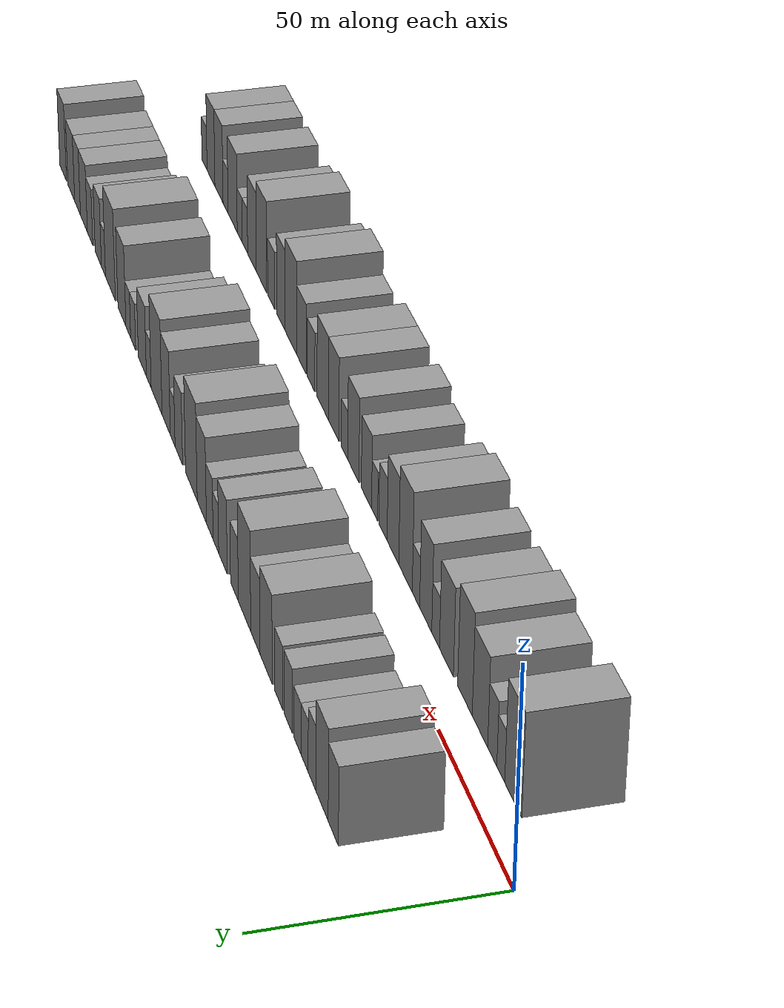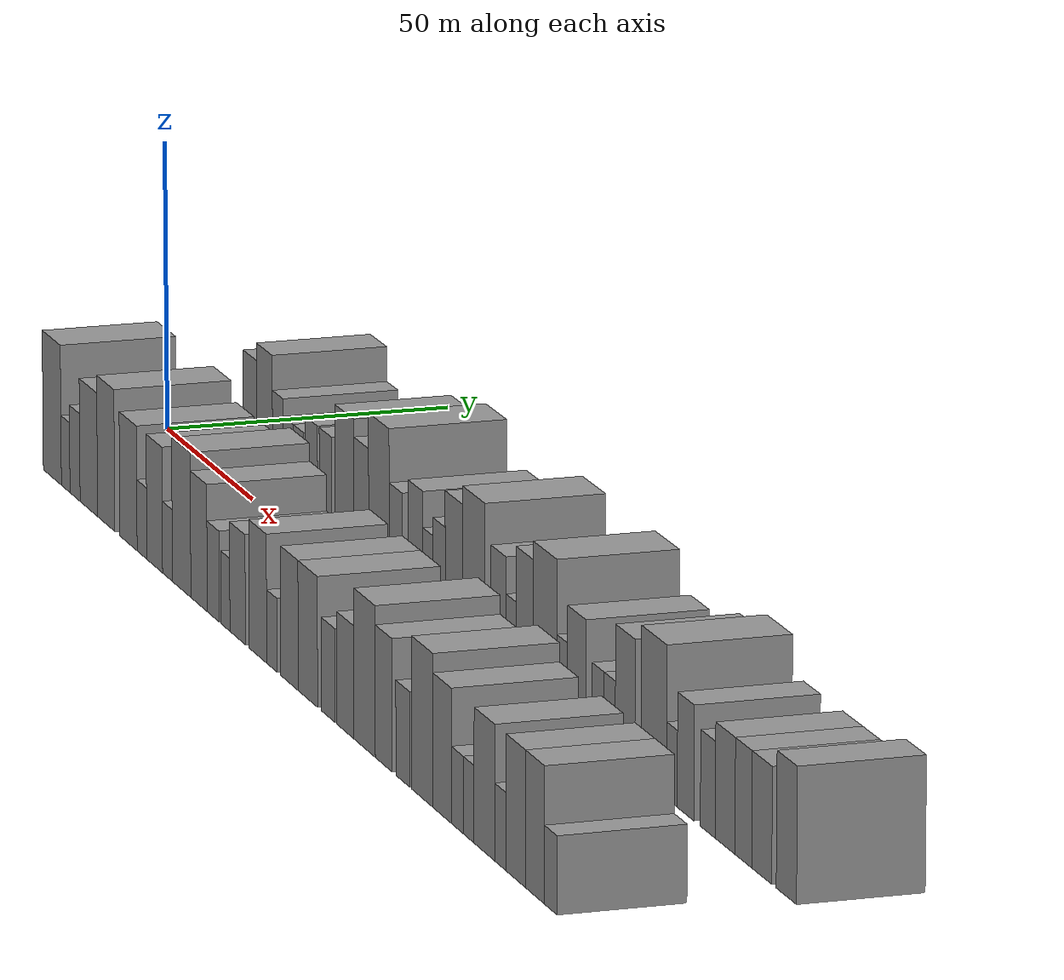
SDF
<sdf version="1.6">
 <world name="default">
  <scene>
   <sky><clouds><speed>12</speed></clouds></sky>
   <ambient>0.4 0.4 0.4 1</ambient>
   <background>0.7 0.7 0.7 1</background>
   <shadows>1</shadows>
  </scene>
  <gravity>0 0 -9.8066</gravity>
  <magnetic_field>6e-06 2.3e-05 -4.2e-05</magnetic_field>
  <physics default="0" name="default_physics" type="ode">
   <ode>
    <solver>
     <type>quick</type>
     <iters>10</iters>
     <sor>1.0</sor>
     <use_dynamic_moi_rescaling>0</use_dynamic_moi_rescaling>
    </solver>
    <constraints>
     <cfm>0</cfm>
     <erp>0.2</erp>
     <contact_max_correcting_vel>100</contact_max_correcting_vel>
     <contact_surface_layer>0.001</contact_surface_layer>
    </constraints>
   </ode>
   <max_step_size>0.004</max_step_size>
   <real_time_factor>1</real_time_factor>
   <real_time_update_rate>250</real_time_update_rate>
  </physics>
  <light name="sun" type="directional">
   <pose>0 0 10 0 0 0</pose>
   <diffuse>0.8 0.8 0.8 1</diffuse>
   <specular>0.2 0.2 0.2 1</specular>
   <attenuation>
    <range>1000</range>
    <constant>0.9</constant>
    <linear>0.01</linear>
    <quadratic>0.001</quadratic>
   </attenuation>
   <direction>-0.5 0.1 -0.9</direction>
  </light>
  <model name="building_1">
   <static>1</static>
   <pose>23.8126 17.5000 0 0.000000 0.000000 1.570796</pose>
   <link name="link">
    <pose>0 0 9.00 0 0 0</pose>
    <collision name="collision"><geometry><box><size>20.0000 7.6253 18.0000</size></box></geometry></collision>
    <visual name="visual">
     <cast_shadows>0</cast_shadows>
     <geometry><box><size>20.0000 7.6253 18.0000</size></box></geometry>
     <material>
      <script>
       <uri>model://grey_wall/materials/scripts</uri>
       <uri>model://grey_wall/materials/textures</uri>
       <name>vrc/grey_wall</name>
      </script>
     </material>
    </visual>
   </link>
  </model>
  <model name="building_2">
   <static>1</static>
   <pose>32.1974 17.5000 0 0.000000 0.000000 1.570796</pose>
   <link name="link">
    <pose>0 0 10.50 0 0 0</pose>
    <collision name="collision"><geometry><box><size>20.0000 9.1443 21.0000</size></box></geometry></collision>
    <visual name="visual">
     <cast_shadows>0</cast_shadows>
     <geometry><box><size>20.0000 9.1443 21.0000</size></box></geometry>
     <material>
      <script>
       <uri>model://grey_wall/materials/scripts</uri>
       <uri>model://grey_wall/materials/textures</uri>
       <name>vrc/grey_wall</name>
      </script>
     </material>
    </visual>
   </link>
  </model>
  <model name="building_3">
   <static>1</static>
   <pose>39.8481 17.5000 0 0.000000 0.000000 1.570796</pose>
   <link name="link">
    <pose>0 0 7.50 0 0 0</pose>
    <collision name="collision"><geometry><box><size>20.0000 6.1571 15.0000</size></box></geometry></collision>
    <visual name="visual">
     <cast_shadows>0</cast_shadows>
     <geometry><box><size>20.0000 6.1571 15.0000</size></box></geometry>
     <material>
      <script>
       <uri>model://grey_wall/materials/scripts</uri>
       <uri>model://grey_wall/materials/textures</uri>
       <name>vrc/grey_wall</name>
      </script>
     </material>
    </visual>
   </link>
  </model>
  <model name="building_4">
   <static>1</static>
   <pose>45.8018 17.5000 0 0.000000 0.000000 1.570796</pose>
   <link name="link">
    <pose>0 0 6.00 0 0 0</pose>
    <collision name="collision"><geometry><box><size>20.0000 5.7503 12.0000</size></box></geometry></collision>
    <visual name="visual">
     <cast_shadows>0</cast_shadows>
     <geometry><box><size>20.0000 5.7503 12.0000</size></box></geometry>
     <material>
      <script>
       <uri>model://grey_wall/materials/scripts</uri>
       <uri>model://grey_wall/materials/textures</uri>
       <name>vrc/grey_wall</name>
      </script>
     </material>
    </visual>
   </link>
  </model>
  <model name="building_5">
   <static>1</static>
   <pose>51.6084 17.5000 0 0.000000 0.000000 1.570796</pose>
   <link name="link">
    <pose>0 0 6.00 0 0 0</pose>
    <collision name="collision"><geometry><box><size>20.0000 5.8628 12.0000</size></box></geometry></collision>
    <visual name="visual">
     <cast_shadows>0</cast_shadows>
     <geometry><box><size>20.0000 5.8628 12.0000</size></box></geometry>
     <material>
      <script>
       <uri>model://grey_wall/materials/scripts</uri>
       <uri>model://grey_wall/materials/textures</uri>
       <name>vrc/grey_wall</name>
      </script>
     </material>
    </visual>
   </link>
  </model>
  <model name="building_6">
   <static>1</static>
   <pose>58.9072 17.5000 0 0.000000 0.000000 1.570796</pose>
   <link name="link">
    <pose>0 0 7.50 0 0 0</pose>
    <collision name="collision"><geometry><box><size>20.0000 6.7347 15.0000</size></box></geometry></collision>
    <visual name="visual">
     <cast_shadows>0</cast_shadows>
     <geometry><box><size>20.0000 6.7347 15.0000</size></box></geometry>
     <material>
      <script>
       <uri>model://grey_wall/materials/scripts</uri>
       <uri>model://grey_wall/materials/textures</uri>
       <name>vrc/grey_wall</name>
      </script>
     </material>
    </visual>
   </link>
  </model>
  <model name="building_7">
   <static>1</static>
   <pose>66.6539 17.5000 0 0.000000 0.000000 1.570796</pose>
   <link name="link">
    <pose>0 0 7.50 0 0 0</pose>
    <collision name="collision"><geometry><box><size>20.0000 6.7587 15.0000</size></box></geometry></collision>
    <visual name="visual">
     <cast_shadows>0</cast_shadows>
     <geometry><box><size>20.0000 6.7587 15.0000</size></box></geometry>
     <material>
      <script>
       <uri>model://grey_wall/materials/scripts</uri>
       <uri>model://grey_wall/materials/textures</uri>
       <name>vrc/grey_wall</name>
      </script>
     </material>
    </visual>
   </link>
  </model>
  <model name="building_8">
   <static>1</static>
   <pose>77.2177 17.5000 0 0.000000 0.000000 1.570796</pose>
   <link name="link">
    <pose>0 0 10.50 0 0 0</pose>
    <collision name="collision"><geometry><box><size>20.0000 10.3690 21.0000</size></box></geometry></collision>
    <visual name="visual">
     <cast_shadows>0</cast_shadows>
     <geometry><box><size>20.0000 10.3690 21.0000</size></box></geometry>
     <material>
      <script>
       <uri>model://grey_wall/materials/scripts</uri>
       <uri>model://grey_wall/materials/textures</uri>
       <name>vrc/grey_wall</name>
      </script>
     </material>
    </visual>
   </link>
  </model>
  <model name="building_9">
   <static>1</static>
   <pose>86.4406 17.5000 0 0.000000 0.000000 1.570796</pose>
   <link name="link">
    <pose>0 0 9.00 0 0 0</pose>
    <collision name="collision"><geometry><box><size>20.0000 8.0770 18.0000</size></box></geometry></collision>
    <visual name="visual">
     <cast_shadows>0</cast_shadows>
     <geometry><box><size>20.0000 8.0770 18.0000</size></box></geometry>
     <material>
      <script>
       <uri>model://grey_wall/materials/scripts</uri>
       <uri>model://grey_wall/materials/textures</uri>
       <name>vrc/grey_wall</name>
      </script>
     </material>
    </visual>
   </link>
  </model>
  <model name="building_10">
   <static>1</static>
   <pose>96.0227 17.5000 0 0.000000 0.000000 1.570796</pose>
   <link name="link">
    <pose>0 0 12.00 0 0 0</pose>
    <collision name="collision"><geometry><box><size>20.0000 11.0871 24.0000</size></box></geometry></collision>
    <visual name="visual">
     <cast_shadows>0</cast_shadows>
     <geometry><box><size>20.0000 11.0871 24.0000</size></box></geometry>
     <material>
      <script>
       <uri>model://grey_wall/materials/scripts</uri>
       <uri>model://grey_wall/materials/textures</uri>
       <name>vrc/grey_wall</name>
      </script>
     </material>
    </visual>
   </link>
  </model>
  <model name="building_11">
   <static>1</static>
   <pose>105.1136 17.5000 0 0.000000 0.000000 1.570796</pose>
   <link name="link">
    <pose>0 0 7.50 0 0 0</pose>
    <collision name="collision"><geometry><box><size>20.0000 7.0948 15.0000</size></box></geometry></collision>
    <visual name="visual">
     <cast_shadows>0</cast_shadows>
     <geometry><box><size>20.0000 7.0948 15.0000</size></box></geometry>
     <material>
      <script>
       <uri>model://grey_wall/materials/scripts</uri>
       <uri>model://grey_wall/materials/textures</uri>
       <name>vrc/grey_wall</name>
      </script>
     </material>
    </visual>
   </link>
  </model>
  <model name="building_12">
   <static>1</static>
   <pose>115.6611 17.5000 0 0.000000 0.000000 1.570796</pose>
   <link name="link">
    <pose>0 0 9.00 0 0 0</pose>
    <collision name="collision"><geometry><box><size>20.0000 8.0001 18.0000</size></box></geometry></collision>
    <visual name="visual">
     <cast_shadows>0</cast_shadows>
     <geometry><box><size>20.0000 8.0001 18.0000</size></box></geometry>
     <material>
      <script>
       <uri>model://grey_wall/materials/scripts</uri>
       <uri>model://grey_wall/materials/textures</uri>
       <name>vrc/grey_wall</name>
      </script>
     </material>
    </visual>
   </link>
  </model>
  <model name="building_13">
   <static>1</static>
   <pose>122.2943 17.5000 0 0.000000 0.000000 1.570796</pose>
   <link name="link">
    <pose>0 0 6.00 0 0 0</pose>
    <collision name="collision"><geometry><box><size>20.0000 5.2664 12.0000</size></box></geometry></collision>
    <visual name="visual">
     <cast_shadows>0</cast_shadows>
     <geometry><box><size>20.0000 5.2664 12.0000</size></box></geometry>
     <material>
      <script>
       <uri>model://grey_wall/materials/scripts</uri>
       <uri>model://grey_wall/materials/textures</uri>
       <name>vrc/grey_wall</name>
      </script>
     </material>
    </visual>
   </link>
  </model>
  <model name="building_14">
   <static>1</static>
   <pose>128.1226 17.5000 0 0.000000 0.000000 1.570796</pose>
   <link name="link">
    <pose>0 0 7.50 0 0 0</pose>
    <collision name="collision"><geometry><box><size>20.0000 6.3901 15.0000</size></box></geometry></collision>
    <visual name="visual">
     <cast_shadows>0</cast_shadows>
     <geometry><box><size>20.0000 6.3901 15.0000</size></box></geometry>
     <material>
      <script>
       <uri>model://grey_wall/materials/scripts</uri>
       <uri>model://grey_wall/materials/textures</uri>
       <name>vrc/grey_wall</name>
      </script>
     </material>
    </visual>
   </link>
  </model>
  <model name="building_15">
   <static>1</static>
   <pose>135.8047 17.5000 0 0.000000 0.000000 1.570796</pose>
   <link name="link">
    <pose>0 0 10.50 0 0 0</pose>
    <collision name="collision"><geometry><box><size>20.0000 8.9742 21.0000</size></box></geometry></collision>
    <visual name="visual">
     <cast_shadows>0</cast_shadows>
     <geometry><box><size>20.0000 8.9742 21.0000</size></box></geometry>
     <material>
      <script>
       <uri>model://grey_wall/materials/scripts</uri>
       <uri>model://grey_wall/materials/textures</uri>
       <name>vrc/grey_wall</name>
      </script>
     </material>
    </visual>
   </link>
  </model>
  <model name="building_16">
   <static>1</static>
   <pose>146.1201 17.5000 0 0.000000 0.000000 1.570796</pose>
   <link name="link">
    <pose>0 0 12.00 0 0 0</pose>
    <collision name="collision"><geometry><box><size>20.0000 11.6566 24.0000</size></box></geometry></collision>
    <visual name="visual">
     <cast_shadows>0</cast_shadows>
     <geometry><box><size>20.0000 11.6566 24.0000</size></box></geometry>
     <material>
      <script>
       <uri>model://grey_wall/materials/scripts</uri>
       <uri>model://grey_wall/materials/textures</uri>
       <name>vrc/grey_wall</name>
      </script>
     </material>
    </visual>
   </link>
  </model>
  <model name="building_17">
   <static>1</static>
   <pose>158.8195 17.5000 0 0.000000 0.000000 1.570796</pose>
   <link name="link">
    <pose>0 0 9.00 0 0 0</pose>
    <collision name="collision"><geometry><box><size>20.0000 7.7421 18.0000</size></box></geometry></collision>
    <visual name="visual">
     <cast_shadows>0</cast_shadows>
     <geometry><box><size>20.0000 7.7421 18.0000</size></box></geometry>
     <material>
      <script>
       <uri>model://grey_wall/materials/scripts</uri>
       <uri>model://grey_wall/materials/textures</uri>
       <name>vrc/grey_wall</name>
      </script>
     </material>
    </visual>
   </link>
  </model>
  <model name="building_18">
   <static>1</static>
   <pose>165.1507 17.5000 0 0.000000 0.000000 1.570796</pose>
   <link name="link">
    <pose>0 0 6.00 0 0 0</pose>
    <collision name="collision"><geometry><box><size>20.0000 4.9204 12.0000</size></box></geometry></collision>
    <visual name="visual">
     <cast_shadows>0</cast_shadows>
     <geometry><box><size>20.0000 4.9204 12.0000</size></box></geometry>
     <material>
      <script>
       <uri>model://grey_wall/materials/scripts</uri>
       <uri>model://grey_wall/materials/textures</uri>
       <name>vrc/grey_wall</name>
      </script>
     </material>
    </visual>
   </link>
  </model>
  <model name="building_19">
   <static>1</static>
   <pose>171.9484 17.5000 0 0.000000 0.000000 1.570796</pose>
   <link name="link">
    <pose>0 0 10.50 0 0 0</pose>
    <collision name="collision"><geometry><box><size>20.0000 8.6751 21.0000</size></box></geometry></collision>
    <visual name="visual">
     <cast_shadows>0</cast_shadows>
     <geometry><box><size>20.0000 8.6751 21.0000</size></box></geometry>
     <material>
      <script>
       <uri>model://grey_wall/materials/scripts</uri>
       <uri>model://grey_wall/materials/textures</uri>
       <name>vrc/grey_wall</name>
      </script>
     </material>
    </visual>
   </link>
  </model>
  <model name="building_20">
   <static>1</static>
   <pose>182.1808 17.5000 0 0.000000 0.000000 1.570796</pose>
   <link name="link">
    <pose>0 0 12.00 0 0 0</pose>
    <collision name="collision"><geometry><box><size>20.0000 11.7897 24.0000</size></box></geometry></collision>
    <visual name="visual">
     <cast_shadows>0</cast_shadows>
     <geometry><box><size>20.0000 11.7897 24.0000</size></box></geometry>
     <material>
      <script>
       <uri>model://grey_wall/materials/scripts</uri>
       <uri>model://grey_wall/materials/textures</uri>
       <name>vrc/grey_wall</name>
      </script>
     </material>
    </visual>
   </link>
  </model>
  <model name="building_21">
   <static>1</static>
   <pose>190.7075 17.5000 0 0.000000 0.000000 1.570796</pose>
   <link name="link">
    <pose>0 0 6.00 0 0 0</pose>
    <collision name="collision"><geometry><box><size>20.0000 5.2637 12.0000</size></box></geometry></collision>
    <visual name="visual">
     <cast_shadows>0</cast_shadows>
     <geometry><box><size>20.0000 5.2637 12.0000</size></box></geometry>
     <material>
      <script>
       <uri>model://grey_wall/materials/scripts</uri>
       <uri>model://grey_wall/materials/textures</uri>
       <name>vrc/grey_wall</name>
      </script>
     </material>
    </visual>
   </link>
  </model>
  <model name="building_22">
   <static>1</static>
   <pose>197.8259 17.5000 0 0.000000 0.000000 1.570796</pose>
   <link name="link">
    <pose>0 0 9.00 0 0 0</pose>
    <collision name="collision"><geometry><box><size>20.0000 8.9731 18.0000</size></box></geometry></collision>
    <visual name="visual">
     <cast_shadows>0</cast_shadows>
     <geometry><box><size>20.0000 8.9731 18.0000</size></box></geometry>
     <material>
      <script>
       <uri>model://grey_wall/materials/scripts</uri>
       <uri>model://grey_wall/materials/textures</uri>
       <name>vrc/grey_wall</name>
      </script>
     </material>
    </visual>
   </link>
  </model>
  <model name="building_23">
   <static>1</static>
   <pose>208.1990 17.5000 0 0.000000 0.000000 1.570796</pose>
   <link name="link">
    <pose>0 0 6.00 0 0 0</pose>
    <collision name="collision"><geometry><box><size>20.0000 5.7732 12.0000</size></box></geometry></collision>
    <visual name="visual">
     <cast_shadows>0</cast_shadows>
     <geometry><box><size>20.0000 5.7732 12.0000</size></box></geometry>
     <material>
      <script>
       <uri>model://grey_wall/materials/scripts</uri>
       <uri>model://grey_wall/materials/textures</uri>
       <name>vrc/grey_wall</name>
      </script>
     </material>
    </visual>
   </link>
  </model>
  <model name="building_24">
   <static>1</static>
   <pose>213.7987 17.5000 0 0.000000 0.000000 1.570796</pose>
   <link name="link">
    <pose>0 0 6.00 0 0 0</pose>
    <collision name="collision"><geometry><box><size>20.0000 5.4261 12.0000</size></box></geometry></collision>
    <visual name="visual">
     <cast_shadows>0</cast_shadows>
     <geometry><box><size>20.0000 5.4261 12.0000</size></box></geometry>
     <material>
      <script>
       <uri>model://grey_wall/materials/scripts</uri>
       <uri>model://grey_wall/materials/textures</uri>
       <name>vrc/grey_wall</name>
      </script>
     </material>
    </visual>
   </link>
  </model>
  <model name="building_25">
   <static>1</static>
   <pose>221.1981 17.5000 0 0.000000 0.000000 1.570796</pose>
   <link name="link">
    <pose>0 0 10.50 0 0 0</pose>
    <collision name="collision"><geometry><box><size>20.0000 9.3727 21.0000</size></box></geometry></collision>
    <visual name="visual">
     <cast_shadows>0</cast_shadows>
     <geometry><box><size>20.0000 9.3727 21.0000</size></box></geometry>
     <material>
      <script>
       <uri>model://grey_wall/materials/scripts</uri>
       <uri>model://grey_wall/materials/textures</uri>
       <name>vrc/grey_wall</name>
      </script>
     </material>
    </visual>
   </link>
  </model>
  <model name="building_26">
   <static>1</static>
   <pose>234.8552 17.5000 0 0.000000 0.000000 1.570796</pose>
   <link name="link">
    <pose>0 0 12.00 0 0 0</pose>
    <collision name="collision"><geometry><box><size>20.0000 11.9416 24.0000</size></box></geometry></collision>
    <visual name="visual">
     <cast_shadows>0</cast_shadows>
     <geometry><box><size>20.0000 11.9416 24.0000</size></box></geometry>
     <material>
      <script>
       <uri>model://grey_wall/materials/scripts</uri>
       <uri>model://grey_wall/materials/textures</uri>
       <name>vrc/grey_wall</name>
      </script>
     </material>
    </visual>
   </link>
  </model>
  <model name="building_27">
   <static>1</static>
   <pose>243.3277 17.5000 0 0.000000 0.000000 1.570796</pose>
   <link name="link">
    <pose>0 0 6.00 0 0 0</pose>
    <collision name="collision"><geometry><box><size>20.0000 5.0033 12.0000</size></box></geometry></collision>
    <visual name="visual">
     <cast_shadows>0</cast_shadows>
     <geometry><box><size>20.0000 5.0033 12.0000</size></box></geometry>
     <material>
      <script>
       <uri>model://grey_wall/materials/scripts</uri>
       <uri>model://grey_wall/materials/textures</uri>
       <name>vrc/grey_wall</name>
      </script>
     </material>
    </visual>
   </link>
  </model>
  <model name="building_28">
   <static>1</static>
   <pose>249.6791 17.5000 0 0.000000 0.000000 1.570796</pose>
   <link name="link">
    <pose>0 0 9.00 0 0 0</pose>
    <collision name="collision"><geometry><box><size>20.0000 7.6994 18.0000</size></box></geometry></collision>
    <visual name="visual">
     <cast_shadows>0</cast_shadows>
     <geometry><box><size>20.0000 7.6994 18.0000</size></box></geometry>
     <material>
      <script>
       <uri>model://grey_wall/materials/scripts</uri>
       <uri>model://grey_wall/materials/textures</uri>
       <name>vrc/grey_wall</name>
      </script>
     </material>
    </visual>
   </link>
  </model>
  <model name="building_29">
   <static>1</static>
   <pose>259.9456 17.5000 0 0.000000 0.000000 1.570796</pose>
   <link name="link">
    <pose>0 0 7.50 0 0 0</pose>
    <collision name="collision"><geometry><box><size>20.0000 6.8336 15.0000</size></box></geometry></collision>
    <visual name="visual">
     <cast_shadows>0</cast_shadows>
     <geometry><box><size>20.0000 6.8336 15.0000</size></box></geometry>
     <material>
      <script>
       <uri>model://grey_wall/materials/scripts</uri>
       <uri>model://grey_wall/materials/textures</uri>
       <name>vrc/grey_wall</name>
      </script>
     </material>
    </visual>
   </link>
  </model>
  <model name="building_30">
   <static>1</static>
   <pose>267.8288 17.5000 0 0.000000 0.000000 1.570796</pose>
   <link name="link">
    <pose>0 0 9.00 0 0 0</pose>
    <collision name="collision"><geometry><box><size>20.0000 8.9329 18.0000</size></box></geometry></collision>
    <visual name="visual">
     <cast_shadows>0</cast_shadows>
     <geometry><box><size>20.0000 8.9329 18.0000</size></box></geometry>
     <material>
      <script>
       <uri>model://grey_wall/materials/scripts</uri>
       <uri>model://grey_wall/materials/textures</uri>
       <name>vrc/grey_wall</name>
      </script>
     </material>
    </visual>
   </link>
  </model>
  <model name="building_31">
   <static>1</static>
   <pose>276.0815 17.5000 0 0.000000 0.000000 1.570796</pose>
   <link name="link">
    <pose>0 0 9.00 0 0 0</pose>
    <collision name="collision"><geometry><box><size>20.0000 7.5723 18.0000</size></box></geometry></collision>
    <visual name="visual">
     <cast_shadows>0</cast_shadows>
     <geometry><box><size>20.0000 7.5723 18.0000</size></box></geometry>
     <material>
      <script>
       <uri>model://grey_wall/materials/scripts</uri>
       <uri>model://grey_wall/materials/textures</uri>
       <name>vrc/grey_wall</name>
      </script>
     </material>
    </visual>
   </link>
  </model>
  <model name="building_32">
   <static>1</static>
   <pose>284.3451 17.5000 0 0.000000 0.000000 1.570796</pose>
   <link name="link">
    <pose>0 0 9.00 0 0 0</pose>
    <collision name="collision"><geometry><box><size>20.0000 8.9550 18.0000</size></box></geometry></collision>
    <visual name="visual">
     <cast_shadows>0</cast_shadows>
     <geometry><box><size>20.0000 8.9550 18.0000</size></box></geometry>
     <material>
      <script>
       <uri>model://grey_wall/materials/scripts</uri>
       <uri>model://grey_wall/materials/textures</uri>
       <name>vrc/grey_wall</name>
      </script>
     </material>
    </visual>
   </link>
  </model>
  <model name="building_33">
   <static>1</static>
   <pose>295.3060 17.5000 0 0.000000 0.000000 1.570796</pose>
   <link name="link">
    <pose>0 0 10.50 0 0 0</pose>
    <collision name="collision"><geometry><box><size>20.0000 8.9669 21.0000</size></box></geometry></collision>
    <visual name="visual">
     <cast_shadows>0</cast_shadows>
     <geometry><box><size>20.0000 8.9669 21.0000</size></box></geometry>
     <material>
      <script>
       <uri>model://grey_wall/materials/scripts</uri>
       <uri>model://grey_wall/materials/textures</uri>
       <name>vrc/grey_wall</name>
      </script>
     </material>
    </visual>
   </link>
  </model>
  <model name="building_34">
   <static>1</static>
   <pose>25.4895 -17.5000 0 0.000000 0.000000 1.570796</pose>
   <link name="link">
    <pose>0 0 12.00 0 0 0</pose>
    <collision name="collision"><geometry><box><size>20.0000 10.9790 24.0000</size></box></geometry></collision>
    <visual name="visual">
     <cast_shadows>0</cast_shadows>
     <geometry><box><size>20.0000 10.9790 24.0000</size></box></geometry>
     <material>
      <script>
       <uri>model://grey_wall/materials/scripts</uri>
       <uri>model://grey_wall/materials/textures</uri>
       <name>vrc/grey_wall</name>
      </script>
     </material>
    </visual>
   </link>
  </model>
  <model name="building_35">
   <static>1</static>
   <pose>33.5721 -17.5000 0 0.000000 0.000000 1.570796</pose>
   <link name="link">
    <pose>0 0 6.00 0 0 0</pose>
    <collision name="collision"><geometry><box><size>20.0000 5.1862 12.0000</size></box></geometry></collision>
    <visual name="visual">
     <cast_shadows>0</cast_shadows>
     <geometry><box><size>20.0000 5.1862 12.0000</size></box></geometry>
     <material>
      <script>
       <uri>model://grey_wall/materials/scripts</uri>
       <uri>model://grey_wall/materials/textures</uri>
       <name>vrc/grey_wall</name>
      </script>
     </material>
    </visual>
   </link>
  </model>
  <model name="building_36">
   <static>1</static>
   <pose>39.2167 -17.5000 0 0.000000 0.000000 1.570796</pose>
   <link name="link">
    <pose>0 0 7.50 0 0 0</pose>
    <collision name="collision"><geometry><box><size>20.0000 6.1029 15.0000</size></box></geometry></collision>
    <visual name="visual">
     <cast_shadows>0</cast_shadows>
     <geometry><box><size>20.0000 6.1029 15.0000</size></box></geometry>
     <material>
      <script>
       <uri>model://grey_wall/materials/scripts</uri>
       <uri>model://grey_wall/materials/textures</uri>
       <name>vrc/grey_wall</name>
      </script>
     </material>
    </visual>
   </link>
  </model>
  <model name="building_37">
   <static>1</static>
   <pose>47.5106 -17.5000 0 0.000000 0.000000 1.570796</pose>
   <link name="link">
    <pose>0 0 10.50 0 0 0</pose>
    <collision name="collision"><geometry><box><size>20.0000 10.4849 21.0000</size></box></geometry></collision>
    <visual name="visual">
     <cast_shadows>0</cast_shadows>
     <geometry><box><size>20.0000 10.4849 21.0000</size></box></geometry>
     <material>
      <script>
       <uri>model://grey_wall/materials/scripts</uri>
       <uri>model://grey_wall/materials/textures</uri>
       <name>vrc/grey_wall</name>
      </script>
     </material>
    </visual>
   </link>
  </model>
  <model name="building_38">
   <static>1</static>
   <pose>57.8438 -17.5000 0 0.000000 0.000000 1.570796</pose>
   <link name="link">
    <pose>0 0 12.00 0 0 0</pose>
    <collision name="collision"><geometry><box><size>20.0000 10.1815 24.0000</size></box></geometry></collision>
    <visual name="visual">
     <cast_shadows>0</cast_shadows>
     <geometry><box><size>20.0000 10.1815 24.0000</size></box></geometry>
     <material>
      <script>
       <uri>model://grey_wall/materials/scripts</uri>
       <uri>model://grey_wall/materials/textures</uri>
       <name>vrc/grey_wall</name>
      </script>
     </material>
    </visual>
   </link>
  </model>
  <model name="building_39">
   <static>1</static>
   <pose>70.9481 -17.5000 0 0.000000 0.000000 1.570796</pose>
   <link name="link">
    <pose>0 0 10.50 0 0 0</pose>
    <collision name="collision"><geometry><box><size>20.0000 10.0271 21.0000</size></box></geometry></collision>
    <visual name="visual">
     <cast_shadows>0</cast_shadows>
     <geometry><box><size>20.0000 10.0271 21.0000</size></box></geometry>
     <material>
      <script>
       <uri>model://grey_wall/materials/scripts</uri>
       <uri>model://grey_wall/materials/textures</uri>
       <name>vrc/grey_wall</name>
      </script>
     </material>
    </visual>
   </link>
  </model>
  <model name="building_40">
   <static>1</static>
   <pose>78.7957 -17.5000 0 0.000000 0.000000 1.570796</pose>
   <link name="link">
    <pose>0 0 6.00 0 0 0</pose>
    <collision name="collision"><geometry><box><size>20.0000 5.6680 12.0000</size></box></geometry></collision>
    <visual name="visual">
     <cast_shadows>0</cast_shadows>
     <geometry><box><size>20.0000 5.6680 12.0000</size></box></geometry>
     <material>
      <script>
       <uri>model://grey_wall/materials/scripts</uri>
       <uri>model://grey_wall/materials/textures</uri>
       <name>vrc/grey_wall</name>
      </script>
     </material>
    </visual>
   </link>
  </model>
  <model name="building_41">
   <static>1</static>
   <pose>86.1465 -17.5000 0 0.000000 0.000000 1.570796</pose>
   <link name="link">
    <pose>0 0 10.50 0 0 0</pose>
    <collision name="collision"><geometry><box><size>20.0000 9.0337 21.0000</size></box></geometry></collision>
    <visual name="visual">
     <cast_shadows>0</cast_shadows>
     <geometry><box><size>20.0000 9.0337 21.0000</size></box></geometry>
     <material>
      <script>
       <uri>model://grey_wall/materials/scripts</uri>
       <uri>model://grey_wall/materials/textures</uri>
       <name>vrc/grey_wall</name>
      </script>
     </material>
    </visual>
   </link>
  </model>
  <model name="building_42">
   <static>1</static>
   <pose>93.4737 -17.5000 0 0.000000 0.000000 1.570796</pose>
   <link name="link">
    <pose>0 0 6.00 0 0 0</pose>
    <collision name="collision"><geometry><box><size>20.0000 5.6207 12.0000</size></box></geometry></collision>
    <visual name="visual">
     <cast_shadows>0</cast_shadows>
     <geometry><box><size>20.0000 5.6207 12.0000</size></box></geometry>
     <material>
      <script>
       <uri>model://grey_wall/materials/scripts</uri>
       <uri>model://grey_wall/materials/textures</uri>
       <name>vrc/grey_wall</name>
      </script>
     </material>
    </visual>
   </link>
  </model>
  <model name="building_43">
   <static>1</static>
   <pose>101.5232 -17.5000 0 0.000000 0.000000 1.570796</pose>
   <link name="link">
    <pose>0 0 12.00 0 0 0</pose>
    <collision name="collision"><geometry><box><size>20.0000 10.4783 24.0000</size></box></geometry></collision>
    <visual name="visual">
     <cast_shadows>0</cast_shadows>
     <geometry><box><size>20.0000 10.4783 24.0000</size></box></geometry>
     <material>
      <script>
       <uri>model://grey_wall/materials/scripts</uri>
       <uri>model://grey_wall/materials/textures</uri>
       <name>vrc/grey_wall</name>
      </script>
     </material>
    </visual>
   </link>
  </model>
  <model name="building_44">
   <static>1</static>
   <pose>111.3621 -17.5000 0 0.000000 0.000000 1.570796</pose>
   <link name="link">
    <pose>0 0 10.50 0 0 0</pose>
    <collision name="collision"><geometry><box><size>20.0000 9.1995 21.0000</size></box></geometry></collision>
    <visual name="visual">
     <cast_shadows>0</cast_shadows>
     <geometry><box><size>20.0000 9.1995 21.0000</size></box></geometry>
     <material>
      <script>
       <uri>model://grey_wall/materials/scripts</uri>
       <uri>model://grey_wall/materials/textures</uri>
       <name>vrc/grey_wall</name>
      </script>
     </material>
    </visual>
   </link>
  </model>
  <model name="building_45">
   <static>1</static>
   <pose>119.2967 -17.5000 0 0.000000 0.000000 1.570796</pose>
   <link name="link">
    <pose>0 0 7.50 0 0 0</pose>
    <collision name="collision"><geometry><box><size>20.0000 6.6696 15.0000</size></box></geometry></collision>
    <visual name="visual">
     <cast_shadows>0</cast_shadows>
     <geometry><box><size>20.0000 6.6696 15.0000</size></box></geometry>
     <material>
      <script>
       <uri>model://grey_wall/materials/scripts</uri>
       <uri>model://grey_wall/materials/textures</uri>
       <name>vrc/grey_wall</name>
      </script>
     </material>
    </visual>
   </link>
  </model>
  <model name="building_46">
   <static>1</static>
   <pose>126.0962 -17.5000 0 0.000000 0.000000 1.570796</pose>
   <link name="link">
    <pose>0 0 6.00 0 0 0</pose>
    <collision name="collision"><geometry><box><size>20.0000 4.9295 12.0000</size></box></geometry></collision>
    <visual name="visual">
     <cast_shadows>0</cast_shadows>
     <geometry><box><size>20.0000 4.9295 12.0000</size></box></geometry>
     <material>
      <script>
       <uri>model://grey_wall/materials/scripts</uri>
       <uri>model://grey_wall/materials/textures</uri>
       <name>vrc/grey_wall</name>
      </script>
     </material>
    </visual>
   </link>
  </model>
  <model name="building_47">
   <static>1</static>
   <pose>132.8215 -17.5000 0 0.000000 0.000000 1.570796</pose>
   <link name="link">
    <pose>0 0 9.00 0 0 0</pose>
    <collision name="collision"><geometry><box><size>20.0000 8.5211 18.0000</size></box></geometry></collision>
    <visual name="visual">
     <cast_shadows>0</cast_shadows>
     <geometry><box><size>20.0000 8.5211 18.0000</size></box></geometry>
     <material>
      <script>
       <uri>model://grey_wall/materials/scripts</uri>
       <uri>model://grey_wall/materials/textures</uri>
       <name>vrc/grey_wall</name>
      </script>
     </material>
    </visual>
   </link>
  </model>
  <model name="building_48">
   <static>1</static>
   <pose>143.8763 -17.5000 0 0.000000 0.000000 1.570796</pose>
   <link name="link">
    <pose>0 0 10.50 0 0 0</pose>
    <collision name="collision"><geometry><box><size>20.0000 9.5885 21.0000</size></box></geometry></collision>
    <visual name="visual">
     <cast_shadows>0</cast_shadows>
     <geometry><box><size>20.0000 9.5885 21.0000</size></box></geometry>
     <material>
      <script>
       <uri>model://grey_wall/materials/scripts</uri>
       <uri>model://grey_wall/materials/textures</uri>
       <name>vrc/grey_wall</name>
      </script>
     </material>
    </visual>
   </link>
  </model>
  <model name="building_49">
   <static>1</static>
   <pose>151.4752 -17.5000 0 0.000000 0.000000 1.570796</pose>
   <link name="link">
    <pose>0 0 6.00 0 0 0</pose>
    <collision name="collision"><geometry><box><size>20.0000 5.6094 12.0000</size></box></geometry></collision>
    <visual name="visual">
     <cast_shadows>0</cast_shadows>
     <geometry><box><size>20.0000 5.6094 12.0000</size></box></geometry>
     <material>
      <script>
       <uri>model://grey_wall/materials/scripts</uri>
       <uri>model://grey_wall/materials/textures</uri>
       <name>vrc/grey_wall</name>
      </script>
     </material>
    </visual>
   </link>
  </model>
  <model name="building_50">
   <static>1</static>
   <pose>160.9302 -17.5000 0 0.000000 0.000000 1.570796</pose>
   <link name="link">
    <pose>0 0 10.50 0 0 0</pose>
    <collision name="collision"><geometry><box><size>20.0000 9.3006 21.0000</size></box></geometry></collision>
    <visual name="visual">
     <cast_shadows>0</cast_shadows>
     <geometry><box><size>20.0000 9.3006 21.0000</size></box></geometry>
     <material>
      <script>
       <uri>model://grey_wall/materials/scripts</uri>
       <uri>model://grey_wall/materials/textures</uri>
       <name>vrc/grey_wall</name>
      </script>
     </material>
    </visual>
   </link>
  </model>
  <model name="building_51">
   <static>1</static>
   <pose>170.7071 -17.5000 0 0.000000 0.000000 1.570796</pose>
   <link name="link">
    <pose>0 0 10.50 0 0 0</pose>
    <collision name="collision"><geometry><box><size>20.0000 10.2532 21.0000</size></box></geometry></collision>
    <visual name="visual">
     <cast_shadows>0</cast_shadows>
     <geometry><box><size>20.0000 10.2532 21.0000</size></box></geometry>
     <material>
      <script>
       <uri>model://grey_wall/materials/scripts</uri>
       <uri>model://grey_wall/materials/textures</uri>
       <name>vrc/grey_wall</name>
      </script>
     </material>
    </visual>
   </link>
  </model>
  <model name="building_52">
   <static>1</static>
   <pose>181.3683 -17.5000 0 0.000000 0.000000 1.570796</pose>
   <link name="link">
    <pose>0 0 7.50 0 0 0</pose>
    <collision name="collision"><geometry><box><size>20.0000 7.0693 15.0000</size></box></geometry></collision>
    <visual name="visual">
     <cast_shadows>0</cast_shadows>
     <geometry><box><size>20.0000 7.0693 15.0000</size></box></geometry>
     <material>
      <script>
       <uri>model://grey_wall/materials/scripts</uri>
       <uri>model://grey_wall/materials/textures</uri>
       <name>vrc/grey_wall</name>
      </script>
     </material>
    </visual>
   </link>
  </model>
  <model name="building_53">
   <static>1</static>
   <pose>190.3363 -17.5000 0 0.000000 0.000000 1.570796</pose>
   <link name="link">
    <pose>0 0 9.00 0 0 0</pose>
    <collision name="collision"><geometry><box><size>20.0000 8.8667 18.0000</size></box></geometry></collision>
    <visual name="visual">
     <cast_shadows>0</cast_shadows>
     <geometry><box><size>20.0000 8.8667 18.0000</size></box></geometry>
     <material>
      <script>
       <uri>model://grey_wall/materials/scripts</uri>
       <uri>model://grey_wall/materials/textures</uri>
       <name>vrc/grey_wall</name>
      </script>
     </material>
    </visual>
   </link>
  </model>
  <model name="building_54">
   <static>1</static>
   <pose>200.2570 -17.5000 0 0.000000 0.000000 1.570796</pose>
   <link name="link">
    <pose>0 0 12.00 0 0 0</pose>
    <collision name="collision"><geometry><box><size>20.0000 10.9747 24.0000</size></box></geometry></collision>
    <visual name="visual">
     <cast_shadows>0</cast_shadows>
     <geometry><box><size>20.0000 10.9747 24.0000</size></box></geometry>
     <material>
      <script>
       <uri>model://grey_wall/materials/scripts</uri>
       <uri>model://grey_wall/materials/textures</uri>
       <name>vrc/grey_wall</name>
      </script>
     </material>
    </visual>
   </link>
  </model>
  <model name="building_55">
   <static>1</static>
   <pose>209.9510 -17.5000 0 0.000000 0.000000 1.570796</pose>
   <link name="link">
    <pose>0 0 10.50 0 0 0</pose>
    <collision name="collision"><geometry><box><size>20.0000 8.4133 21.0000</size></box></geometry></collision>
    <visual name="visual">
     <cast_shadows>0</cast_shadows>
     <geometry><box><size>20.0000 8.4133 21.0000</size></box></geometry>
     <material>
      <script>
       <uri>model://grey_wall/materials/scripts</uri>
       <uri>model://grey_wall/materials/textures</uri>
       <name>vrc/grey_wall</name>
      </script>
     </material>
    </visual>
   </link>
  </model>
  <model name="building_56">
   <static>1</static>
   <pose>219.6437 -17.5000 0 0.000000 0.000000 1.570796</pose>
   <link name="link">
    <pose>0 0 7.50 0 0 0</pose>
    <collision name="collision"><geometry><box><size>20.0000 6.9720 15.0000</size></box></geometry></collision>
    <visual name="visual">
     <cast_shadows>0</cast_shadows>
     <geometry><box><size>20.0000 6.9720 15.0000</size></box></geometry>
     <material>
      <script>
       <uri>model://grey_wall/materials/scripts</uri>
       <uri>model://grey_wall/materials/textures</uri>
       <name>vrc/grey_wall</name>
      </script>
     </material>
    </visual>
   </link>
  </model>
  <model name="building_57">
   <static>1</static>
   <pose>229.3934 -17.5000 0 0.000000 0.000000 1.570796</pose>
   <link name="link">
    <pose>0 0 12.00 0 0 0</pose>
    <collision name="collision"><geometry><box><size>20.0000 10.5274 24.0000</size></box></geometry></collision>
    <visual name="visual">
     <cast_shadows>0</cast_shadows>
     <geometry><box><size>20.0000 10.5274 24.0000</size></box></geometry>
     <material>
      <script>
       <uri>model://grey_wall/materials/scripts</uri>
       <uri>model://grey_wall/materials/textures</uri>
       <name>vrc/grey_wall</name>
      </script>
     </material>
    </visual>
   </link>
  </model>
  <model name="building_58">
   <static>1</static>
   <pose>239.2051 -17.5000 0 0.000000 0.000000 1.570796</pose>
   <link name="link">
    <pose>0 0 10.50 0 0 0</pose>
    <collision name="collision"><geometry><box><size>20.0000 9.0959 21.0000</size></box></geometry></collision>
    <visual name="visual">
     <cast_shadows>0</cast_shadows>
     <geometry><box><size>20.0000 9.0959 21.0000</size></box></geometry>
     <material>
      <script>
       <uri>model://grey_wall/materials/scripts</uri>
       <uri>model://grey_wall/materials/textures</uri>
       <name>vrc/grey_wall</name>
      </script>
     </material>
    </visual>
   </link>
  </model>
  <model name="building_59">
   <static>1</static>
   <pose>246.6324 -17.5000 0 0.000000 0.000000 1.570796</pose>
   <link name="link">
    <pose>0 0 6.00 0 0 0</pose>
    <collision name="collision"><geometry><box><size>20.0000 5.7586 12.0000</size></box></geometry></collision>
    <visual name="visual">
     <cast_shadows>0</cast_shadows>
     <geometry><box><size>20.0000 5.7586 12.0000</size></box></geometry>
     <material>
      <script>
       <uri>model://grey_wall/materials/scripts</uri>
       <uri>model://grey_wall/materials/textures</uri>
       <name>vrc/grey_wall</name>
      </script>
     </material>
    </visual>
   </link>
  </model>
  <model name="building_60">
   <static>1</static>
   <pose>252.1695 -17.5000 0 0.000000 0.000000 1.570796</pose>
   <link name="link">
    <pose>0 0 6.00 0 0 0</pose>
    <collision name="collision"><geometry><box><size>20.0000 5.3156 12.0000</size></box></geometry></collision>
    <visual name="visual">
     <cast_shadows>0</cast_shadows>
     <geometry><box><size>20.0000 5.3156 12.0000</size></box></geometry>
     <material>
      <script>
       <uri>model://grey_wall/materials/scripts</uri>
       <uri>model://grey_wall/materials/textures</uri>
       <name>vrc/grey_wall</name>
      </script>
     </material>
    </visual>
   </link>
  </model>
  <model name="building_61">
   <static>1</static>
   <pose>259.7854 -17.5000 0 0.000000 0.000000 1.570796</pose>
   <link name="link">
    <pose>0 0 10.50 0 0 0</pose>
    <collision name="collision"><geometry><box><size>20.0000 9.9163 21.0000</size></box></geometry></collision>
    <visual name="visual">
     <cast_shadows>0</cast_shadows>
     <geometry><box><size>20.0000 9.9163 21.0000</size></box></geometry>
     <material>
      <script>
       <uri>model://grey_wall/materials/scripts</uri>
       <uri>model://grey_wall/materials/textures</uri>
       <name>vrc/grey_wall</name>
      </script>
     </material>
    </visual>
   </link>
  </model>
  <model name="building_62">
   <static>1</static>
   <pose>267.5039 -17.5000 0 0.000000 0.000000 1.570796</pose>
   <link name="link">
    <pose>0 0 6.00 0 0 0</pose>
    <collision name="collision"><geometry><box><size>20.0000 5.5207 12.0000</size></box></geometry></collision>
    <visual name="visual">
     <cast_shadows>0</cast_shadows>
     <geometry><box><size>20.0000 5.5207 12.0000</size></box></geometry>
     <material>
      <script>
       <uri>model://grey_wall/materials/scripts</uri>
       <uri>model://grey_wall/materials/textures</uri>
       <name>vrc/grey_wall</name>
      </script>
     </material>
    </visual>
   </link>
  </model>
  <model name="building_63">
   <static>1</static>
   <pose>274.8048 -17.5000 0 0.000000 0.000000 1.570796</pose>
   <link name="link">
    <pose>0 0 10.50 0 0 0</pose>
    <collision name="collision"><geometry><box><size>20.0000 9.0812 21.0000</size></box></geometry></collision>
    <visual name="visual">
     <cast_shadows>0</cast_shadows>
     <geometry><box><size>20.0000 9.0812 21.0000</size></box></geometry>
     <material>
      <script>
       <uri>model://grey_wall/materials/scripts</uri>
       <uri>model://grey_wall/materials/textures</uri>
       <name>vrc/grey_wall</name>
      </script>
     </material>
    </visual>
   </link>
  </model>
  <model name="building_64">
   <static>1</static>
   <pose>283.8196 -17.5000 0 0.000000 0.000000 1.570796</pose>
   <link name="link">
    <pose>0 0 10.50 0 0 0</pose>
    <collision name="collision"><geometry><box><size>20.0000 8.9483 21.0000</size></box></geometry></collision>
    <visual name="visual">
     <cast_shadows>0</cast_shadows>
     <geometry><box><size>20.0000 8.9483 21.0000</size></box></geometry>
     <material>
      <script>
       <uri>model://grey_wall/materials/scripts</uri>
       <uri>model://grey_wall/materials/textures</uri>
       <name>vrc/grey_wall</name>
      </script>
     </material>
    </visual>
   </link>
  </model>
  <model name="building_65">
   <static>1</static>
   <pose>291.2300 -17.5000 0 0.000000 0.000000 1.570796</pose>
   <link name="link">
    <pose>0 0 6.00 0 0 0</pose>
    <collision name="collision"><geometry><box><size>20.0000 5.8726 12.0000</size></box></geometry></collision>
    <visual name="visual">
     <cast_shadows>0</cast_shadows>
     <geometry><box><size>20.0000 5.8726 12.0000</size></box></geometry>
     <material>
      <script>
       <uri>model://grey_wall/materials/scripts</uri>
       <uri>model://grey_wall/materials/textures</uri>
       <name>vrc/grey_wall</name>
      </script>
     </material>
    </visual>
   </link>
  </model>
 </world>
</sdf>
